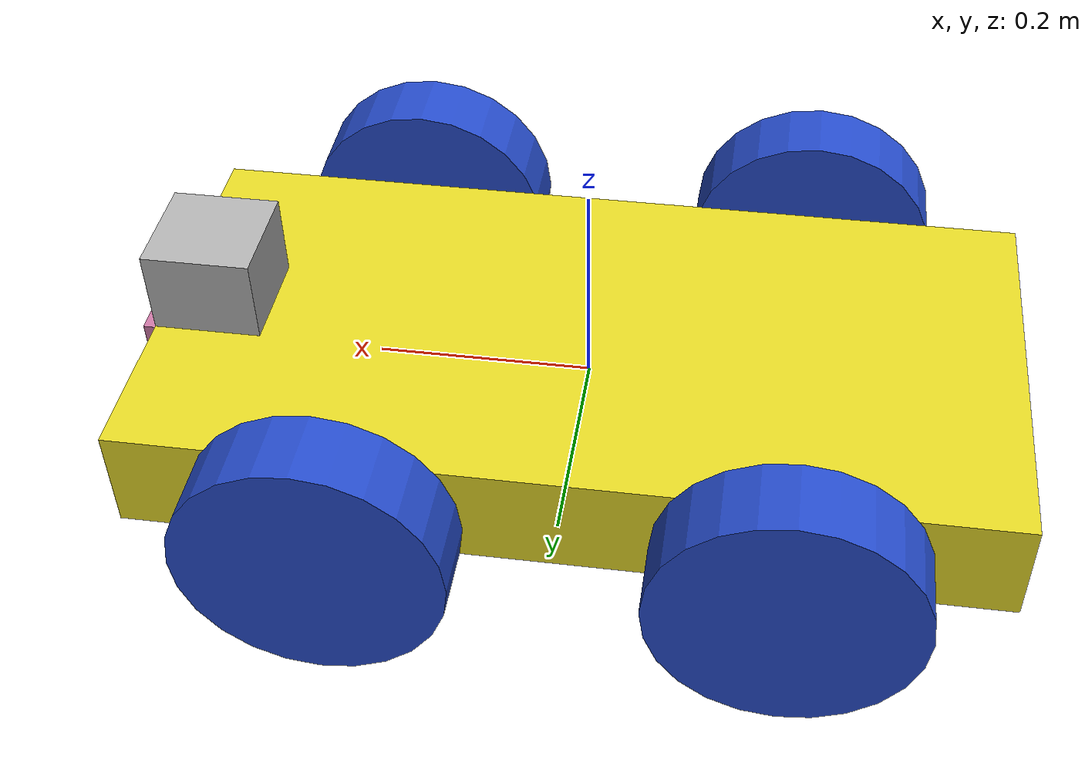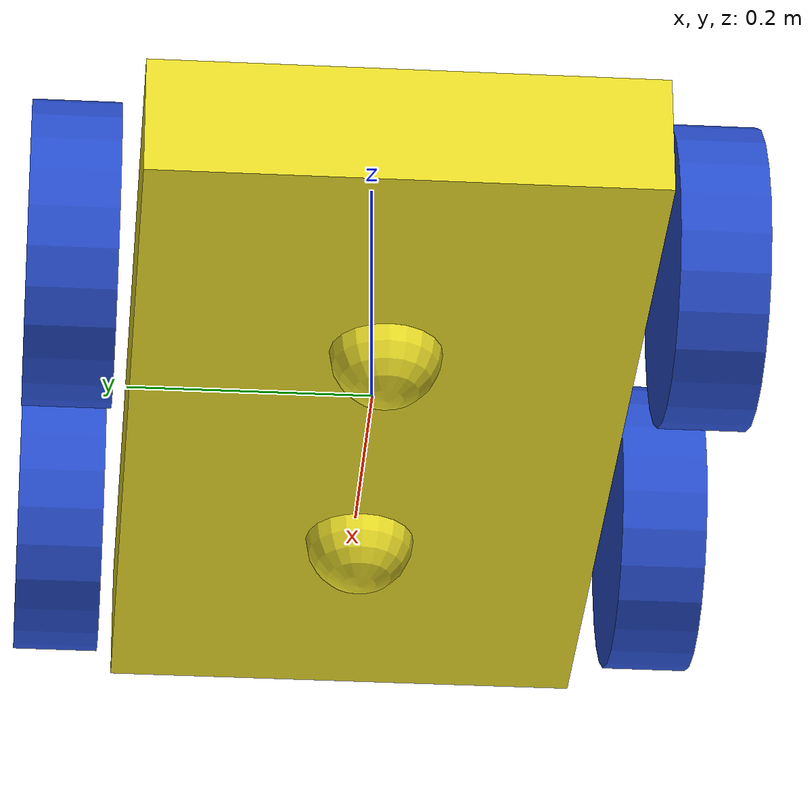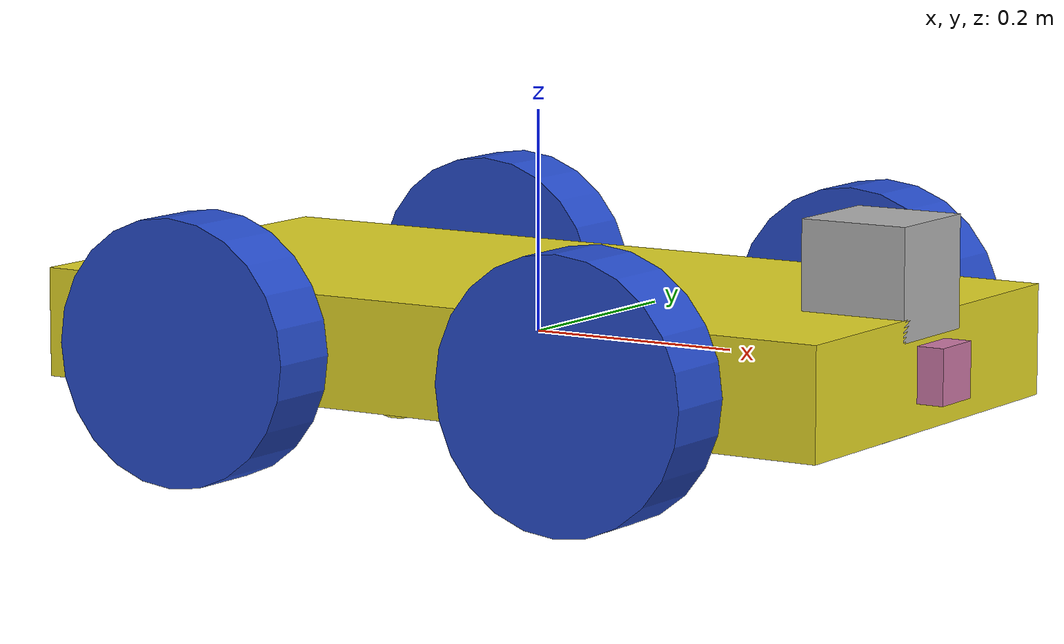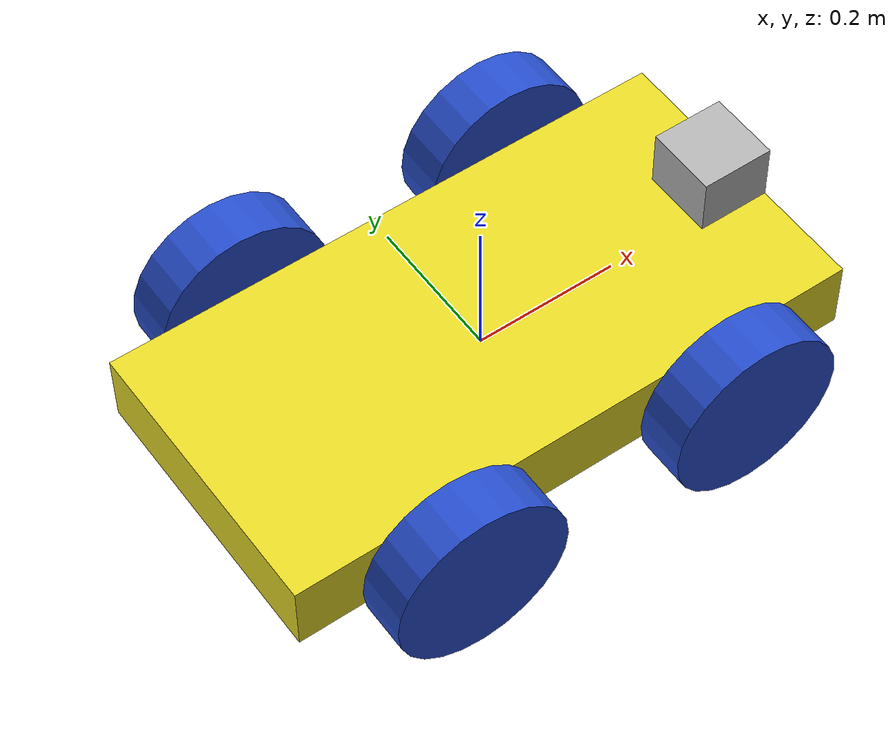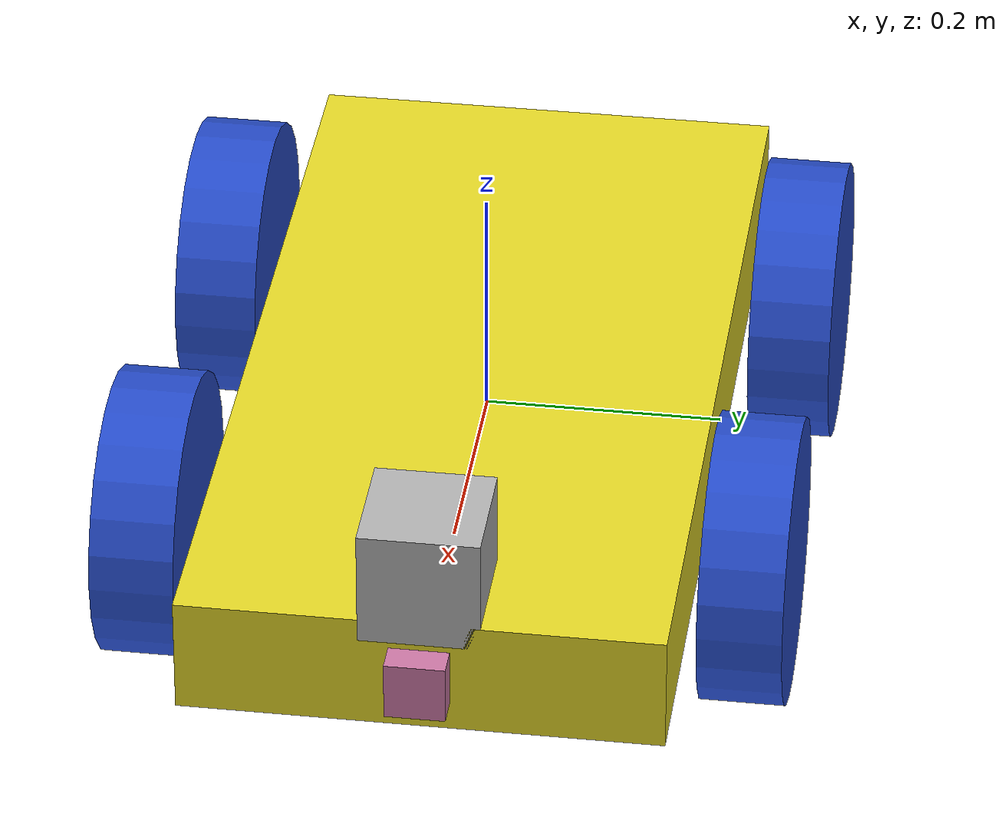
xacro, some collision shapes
<?xml version='1.0'?>

<robot name="my_robot" xmlns:xacro="http://www.ros.org/wiki/xacro">
<xacro:include filename="$(find my_robot)/urdf/my_robot.gazebo" />
  <link name="robot_footprint"></link>

  <joint name="robot_footprint_joint" type="fixed">
    <origin xyz="0 0 0" rpy="0 0 0" />
    <parent link="robot_footprint"/>
    <child link="chassis" />
  </joint>

  <link name='chassis'>
    <pose>0 0 0.1 0 0 0</pose>

    <inertial>
      <mass value="60.0"/>
      <origin xyz="0.0 0 0" rpy=" 0 0 0"/>
      <inertia
          ixx="0.1" ixy="0" ixz="0"
          iyy="0.1" iyz="0"
          izz="0.1"
      />
    </inertial>

    <collision name='collision'>
      <origin xyz="0 0 0" rpy=" 0 0 0"/>
      <geometry>
        <box size=".8 .4 .1"/>
      </geometry>
    </collision>

    <visual name='chassis_visual'>
      <origin xyz="0 0 0" rpy=" 0 0 0"/>
      <geometry>
        <box size=".8 .4 .1"/>
      </geometry>
    </visual>

  <!--.............................back_caster..............................-->
    <collision name='back_caster_collision'>
      <origin xyz="-0.15 0 -0.05" rpy=" 0 0 0"/>
      <geometry>
        <sphere radius="0.04449"/>
      </geometry>
    </collision>

    <visual name='back_caster_visual'>
      <origin xyz="-0.15 0 -0.05" rpy=" 0 0 0"/>
      <geometry>
        <sphere radius="0.045"/>
      </geometry>
    </visual>

  <!--.............................front_caster..............................-->
    <collision name='front_caster_collision'>
      <origin xyz="0.15 0 -0.05" rpy=" 0 0 0"/>
      <geometry>
        <sphere radius="0.0449"/>
      </geometry>
    </collision>

    <visual name='front_caster_visual'>
      <origin xyz="0.15 0 -0.05" rpy=" 0 0 0"/>
      <geometry>
        <sphere radius="0.045"/>
      </geometry>
    </visual>

  </link>

  <gazebo reference="chassis">
          <material>Gazebo/Yellow</material>
  </gazebo>

<!--.............................left_front_wheel..............................-->

  <link name='left_front_wheel'>

    <inertial>
      <mass value="5"/>
      <origin xyz="0.0 0 0" rpy=" 0 1.5707 1.5707"/>
      <inertia
          ixx="0.1" ixy="0" ixz="0"
          iyy="0.1" iyz="0"
          izz="0.1"
      />
    </inertial>

    <collision name='left_front_wheel_collision'>
      <origin xyz="0.0 0 0" rpy=" 0 1.5707 1.5707"/>
      <geometry>
        <cylinder radius=" .12" length="0.07"/>
      </geometry>
    </collision>

    <visual name='left_front_wheel_visual'>
      <origin xyz="0.0 0 0" rpy=" 0 1.5707 1.5707"/>
      <geometry>
        <cylinder radius=" .12" length="0.07"/>
      </geometry>
    </visual>

  </link>

  <gazebo reference="left_front_wheel">
           <material>Gazebo/Blue</material>
  </gazebo>

  <joint type="continuous" name="left_front_wheel_hinge">
    <origin xyz="0.2 0.25 0" rpy="0 0 0"/>
    <child link="left_front_wheel"/>
    <parent link="chassis"/>
    <axis xyz="0 1 0" rpy="0 0 0"/>
    <limit effort="10000" velocity="1000"/>
    <dynamics damping="1.0" friction="1.0"/>
  </joint>

<!--.............................right_front_wheel..............................-->
  <link name='right_front_wheel'>

    <inertial>
      <mass value="5"/>
      <origin xyz="0.0 0 0" rpy=" 0 1.5707 1.5707"/>
      <inertia
          ixx="0.1" ixy="0" ixz="0"
          iyy="0.1" iyz="0"
          izz="0.1"
      />
    </inertial>

    <collision name='right_front_wheel_collision'>
     <origin xyz="0.0 0 0" rpy=" 0 1.5707 1.5707"/>
      <geometry>
        <cylinder radius=" .12" length="0.07"/>
      </geometry>
    </collision>

    <visual name='right_front_wheel_visual'>
      <origin xyz="0.0 0 0" rpy=" 0 1.5707 1.5707"/>
      <geometry>
        <cylinder radius=" .12" length="0.07"/>
      </geometry>
    </visual>

  </link>

  <gazebo reference="right_front_wheel">
          <material>Gazebo/Blue</material>
  </gazebo>

  <joint type="continuous" name="right_front_wheel_hinge">
    <origin xyz="0.2 -0.25 0" rpy="0 0 0"/>
    <child link="right_front_wheel"/>
    <parent link="chassis"/>
    <axis xyz="0 1 0" rpy="0 0 0"/>
    <limit effort="10000" velocity="1000"/>
    <dynamics damping="1.0" friction="1.0"/>
  </joint>

<!--.............................left_back_wheel..............................-->

  <link name='left_back_wheel'>

    <inertial>
      <mass value="5"/>
      <origin xyz="0.0 0 0" rpy=" 0 1.5707 1.5707"/>
      <inertia
          ixx="0.1" ixy="0" ixz="0"
          iyy="0.1" iyz="0"
          izz="0.1"
      />
    </inertial>

    <collision name='left_back_wheel_collision'>
      <origin xyz="0.0 0 0" rpy=" 0 1.5707 1.5707"/>
      <geometry>
        <cylinder radius=" .12" length="0.07"/>
      </geometry>
    </collision>

    <visual name='left_back_wheel_visual'>
      <origin xyz="0.0 0 0" rpy=" 0 1.5707 1.5707"/>
      <geometry>
        <cylinder radius=" .12" length="0.07"/>
      </geometry>
    </visual>

  </link>

  <gazebo reference="left_back_wheel">
          <material>Gazebo/Blue</material>
  </gazebo>

  <joint type="continuous" name="left_back_wheel_hinge">
    <origin xyz="-0.2 0.25 0" rpy="0 0 0"/>
    <child link="left_back_wheel"/>
    <parent link="chassis"/>
    <axis xyz="0 1 0" rpy="0 0 0"/>
    <limit effort="10000" velocity="1000"/>
    <dynamics damping="1.0" friction="1.1"/>
  </joint>

<!--.............................right_back_wheel..............................-->
  <link name='right_back_wheel'>

    <inertial>
      <mass value="5"/>
      <origin xyz="0.0 0 0" rpy=" 0 1.5707 1.5707"/>
      <inertia
          ixx="0.1" ixy="0" ixz="0"
          iyy="0.1" iyz="0"
          izz="0.1"
      />
    </inertial>

    <collision name='right_back_wheel_collision'>
     <origin xyz="0.0 0 0" rpy=" 0 1.5707 1.5707"/>
      <geometry>
        <cylinder radius=" .12" length="0.07"/>
      </geometry>
    </collision>

    <visual name='right_back_wheel_visual'>
      <origin xyz="0.0 0 0" rpy=" 0 1.5707 1.5707"/>
      <geometry>
        <cylinder radius=" .12" length="0.07"/>
      </geometry>
    </visual>

  </link>

  <gazebo reference="right_back_wheel">
          <material>Gazebo/Blue</material>
  </gazebo>

  <joint type="continuous" name="right_back_wheel_hinge">
    <origin xyz="-0.2 -0.25 0" rpy="0 0 0"/>
    <child link="right_back_wheel"/>
    <parent link="chassis"/>
    <axis xyz="0 1 0" rpy="0 0 0"/>
    <limit effort="10000" velocity="1000"/>
    <dynamics damping="1.0" friction="1.1"/>
  </joint>

<!--.........Camera....................Camera................Camera..............-->
  <link name='camera'>

    <inertial>
      <mass value="0.1"/>
      <origin xyz="0 0 0" rpy=" 0 0 0"/>
      <box_inertia m="0.1"/>
      <inertia
          ixx="1e-6" ixy="0" ixz="0"
          iyy="1e-6" iyz="0"
          izz="1e-6"
      />
    </inertial>

    <collision name='Camera_collision'>
     <origin xyz="0.0 0 0" rpy=" 0 0 0"/>
      <geometry>
        <box size=".05 .05 .05"/>
      </geometry>
    </collision>

    <visual name='Camera_visual'>
      <origin xyz="0.0 0 0" rpy=" 0 0 0"/>
      <geometry>
        <box size=".05 .05 .05"/>

      </geometry>
    </visual>

  </link>

  <joint type="fixed" name="camera_joint">
    <origin xyz="0.4 0 0" rpy="0 0 0"/>
    <child link="camera"/>
    <parent link="chassis"/>
    <axis xyz="0 1 0" rpy="0 0 0"/>
    <limit effort="10000" velocity="1000"/>
    <dynamics damping="1.0" friction="1.0"/>
  </joint>

<!--.........hokuyo....................hokuyo................hokuyo..............-->
  <link name='hokuyo'>

    <inertial>
      <mass value="1e-5"/>
      <origin xyz="0 0 0" rpy=" 0 0 0"/>
      <inertia
          ixx="1e-6" ixy="0" ixz="0"
          iyy="1e-6" iyz="0"
          izz="1e-6"
      />
    </inertial>

    <collision name='hokuyo_collision'>
     <origin xyz="0.0 0 0" rpy=" 0 0 0"/>
      <geometry>
        <box size=".1 .1 .1"/>
      </geometry>
    </collision>

    <visual name='hokuyo_visual'>
      <origin xyz="0.0 0 0" rpy=" 0 0 0"/>
      <geometry>
        <mesh filename="package://my_robot/meshes/hokuyo.dae"/>
        <box size=".05 .05 .05"/>
      </geometry>
    </visual>

  </link>

  <joint type="fixed" name="hokuyo_joint">
    <origin xyz="0.35 0 0.08" rpy="0 0 0"/>
    <child link="hokuyo"/>
    <parent link="chassis"/>
    <axis xyz="0 1 0" rpy="0 0 0"/>
    <limit effort="10000" velocity="1000"/>
    <dynamics damping="1.0" friction="1.0"/>
  </joint>

</robot>
